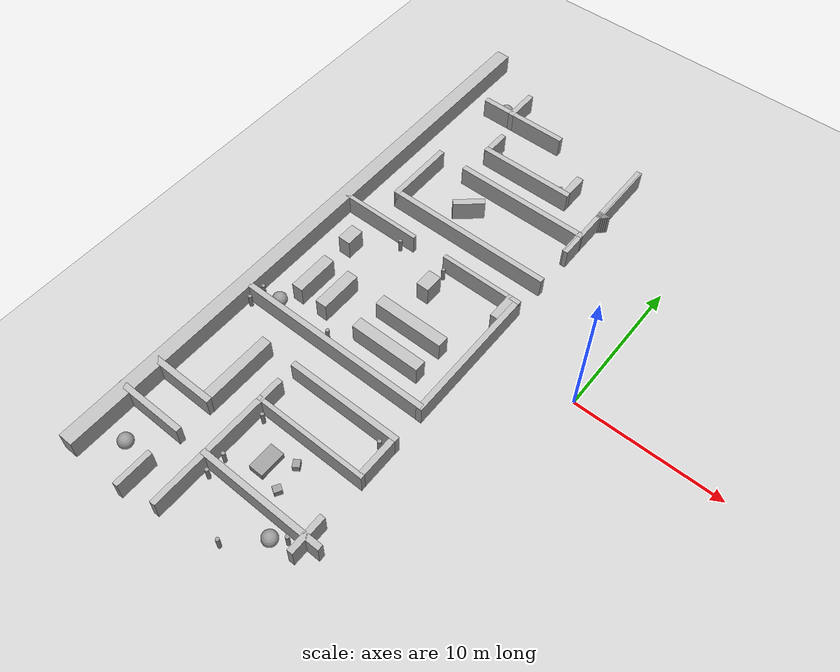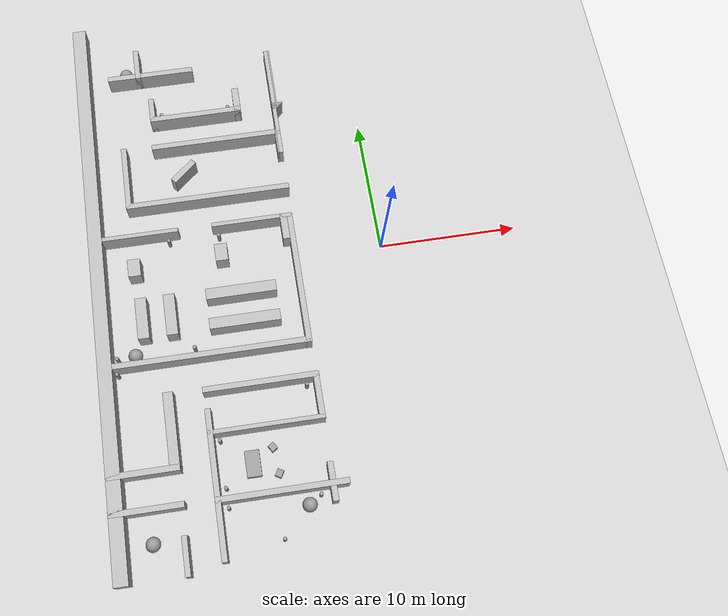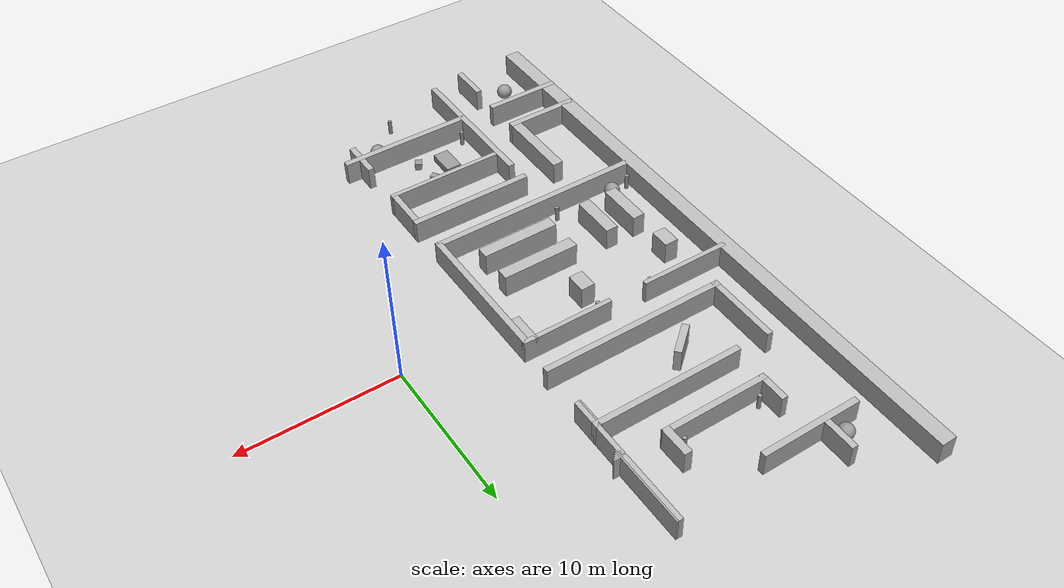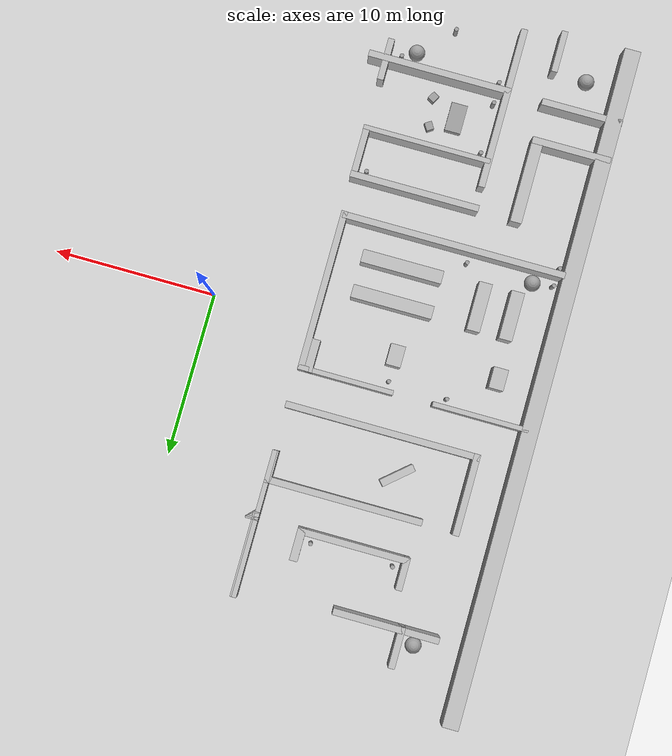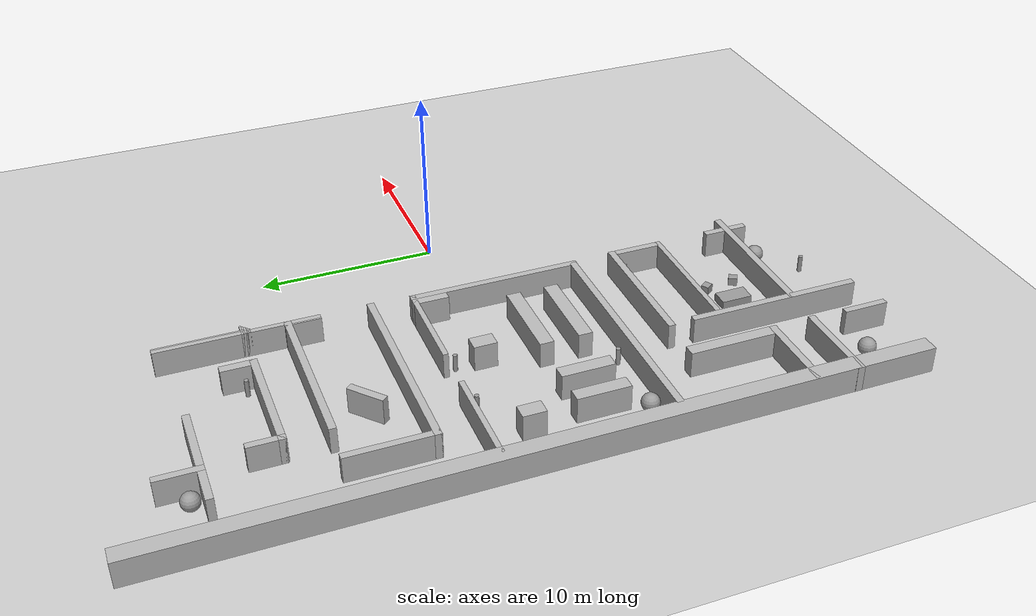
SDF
<sdf version="1.7">
 <world name="test_world">
  <model name="ground_plane">
   <static>1</static>
   <link name="link">
    <collision name="collision">
     <geometry><plane><normal>0 0 1</normal><size>100 100</size></plane></geometry>
    </collision>
    <visual name="visual">
     <geometry><plane><normal>0 0 1</normal><size>100 100</size></plane></geometry>
     <material>
      <script>
       <uri>file://media/materials/scripts/gazebo.material</uri>
       <name>__default__</name>
       <n>Gazebo/Grey</n>
      </script>
     </material>
    </visual>
   </link>
  </model>
  <model name="outer_left">
   <static>1</static>
   <pose>-20.5 0 0.75 0 -0 0</pose>
   <link name="link">
    <collision name="collision"><geometry><box><size>1 42 1.5</size></box></geometry></collision>
    <visual name="visual">
     <geometry><box><size>1 42 1.5</size></box></geometry>
     <material>
      <script>
       <uri>file://media/materials/scripts/gazebo.material</uri>
       <name>__default__</name>
       <n>Gazebo/Grey</n>
      </script>
     </material>
    </visual>
   </link>
  </model>
  <model name="hw_0">
   <static>1</static>
   <pose>-15.3 16.25 0.75 0 -0 0</pose>
   <link name="link">
    <collision name="collision"><geometry><box><size>6.5 0.4 1.5</size></box></geometry></collision>
    <visual name="visual">
     <geometry><box><size>6.5 0.4 1.5</size></box></geometry>
     <material>
      <script>
       <uri>file://media/materials/scripts/gazebo.material</uri>
       <name>__default__</name>
       <n>Gazebo/Grey</n>
      </script>
     </material>
    </visual>
   </link>
  </model>
  <model name="hw_1">
   <static>1</static>
   <pose>-12.05 5.25 0.75 0 -0 0</pose>
   <link name="link">
    <collision name="collision"><geometry><box><size>12 0.4 1.5</size></box></geometry></collision>
    <visual name="visual">
     <geometry><box><size>12 0.4 1.5</size></box></geometry>
     <material>
      <script>
       <uri>file://media/materials/scripts/gazebo.material</uri>
       <name>__default__</name>
       <n>Gazebo/Grey</n>
      </script>
     </material>
    </visual>
   </link>
  </model>
  <model name="hw_2">
   <static>1</static>
   <pose>-10.9 9.85 0.75 0 -0 0</pose>
   <link name="link">
    <collision name="collision"><geometry><box><size>9.7 0.4 1.5</size></box></geometry></collision>
    <visual name="visual">
     <geometry><box><size>9.7 0.4 1.5</size></box></geometry>
     <material>
      <script>
       <uri>file://media/materials/scripts/gazebo.material</uri>
       <name>__default__</name>
       <n>Gazebo/Grey</n>
      </script>
     </material>
    </visual>
   </link>
  </model>
  <model name="hw_3">
   <static>1</static>
   <pose>-12.2 12.25 0.75 0 -0 0</pose>
   <link name="link">
    <collision name="collision"><geometry><box><size>6.9 0.4 1.5</size></box></geometry></collision>
    <visual name="visual">
     <geometry><box><size>6.9 0.4 1.5</size></box></geometry>
     <material>
      <script>
       <uri>file://media/materials/scripts/gazebo.material</uri>
       <name>__default__</name>
       <n>Gazebo/Grey</n>
      </script>
     </material>
    </visual>
   </link>
  </model>
  <model name="hw_4">
   <static>1</static>
   <pose>-13.6 7.55 0.75 0 -0 0.712137</pose>
   <link name="link">
    <collision name="collision"><geometry><box><size>2.16529 0.451675 1.5</size></box></geometry></collision>
    <visual name="visual">
     <geometry><box><size>2.16529 0.451675 1.5</size></box></geometry>
     <material>
      <script>
       <uri>file://media/materials/scripts/gazebo.material</uri>
       <name>__default__</name>
       <n>Gazebo/Grey</n>
      </script>
     </material>
    </visual>
   </link>
  </model>
  <model name="hw_5">
   <static>1</static>
   <pose>-10.05 -9.15 0.75 0 -0 0</pose>
   <link name="link">
    <collision name="collision"><geometry><box><size>8 0.4 1.5</size></box></geometry></collision>
    <visual name="visual">
     <geometry><box><size>8 0.4 1.5</size></box></geometry>
     <material>
      <script>
       <uri>file://media/materials/scripts/gazebo.material</uri>
       <name>__default__</name>
       <n>Gazebo/Grey</n>
      </script>
     </material>
    </visual>
   </link>
  </model>
  <model name="hw_6">
   <static>1</static>
   <pose>-10.05 -12.1 0.75 0 -0 0</pose>
   <link name="link">
    <collision name="collision"><geometry><box><size>8 0.3 1.5</size></box></geometry></collision>
    <visual name="visual">
     <geometry><box><size>8 0.3 1.5</size></box></geometry>
     <material>
      <script>
       <uri>file://media/materials/scripts/gazebo.material</uri>
       <name>__default__</name>
       <n>Gazebo/Grey</n>
      </script>
     </material>
    </visual>
   </link>
  </model>
  <model name="hw_7">
   <static>1</static>
   <pose>-9.6 -16.55 0.75 0 -0 0</pose>
   <link name="link">
    <collision name="collision"><geometry><box><size>8.9 0.4 1.5</size></box></geometry></collision>
    <visual name="visual">
     <geometry><box><size>8.9 0.4 1.5</size></box></geometry>
     <material>
      <script>
       <uri>file://media/materials/scripts/gazebo.material</uri>
       <name>__default__</name>
       <n>Gazebo/Grey</n>
      </script>
     </material>
    </visual>
   </link>
  </model>
  <model name="hw_8">
   <static>1</static>
   <pose>-10.55 -2.35 0.75 0 -0 0</pose>
   <link name="link">
    <collision name="collision"><geometry><box><size>5 0.8 1.5</size></box></geometry></collision>
    <visual name="visual">
     <geometry><box><size>5 0.8 1.5</size></box></geometry>
     <material>
      <script>
       <uri>file://media/materials/scripts/gazebo.material</uri>
       <name>__default__</name>
       <n>Gazebo/Grey</n>
      </script>
     </material>
    </visual>
   </link>
  </model>
  <model name="hw_9">
   <static>1</static>
   <pose>-10.55 -4.55 0.75 0 -0 0</pose>
   <link name="link">
    <collision name="collision"><geometry><box><size>5 0.8 1.5</size></box></geometry></collision>
    <visual name="visual">
     <geometry><box><size>5 0.8 1.5</size></box></geometry>
     <material>
      <script>
       <uri>file://media/materials/scripts/gazebo.material</uri>
       <name>__default__</name>
       <n>Gazebo/Grey</n>
      </script>
     </material>
    </visual>
   </link>
  </model>
  <model name="hw_10">
   <static>1</static>
   <pose>-9.1 2.9 0.75 0 -0 0</pose>
   <link name="link">
    <collision name="collision"><geometry><box><size>5.9 0.3 1.5</size></box></geometry></collision>
    <visual name="visual">
     <geometry><box><size>5.9 0.3 1.5</size></box></geometry>
     <material>
      <script>
       <uri>file://media/materials/scripts/gazebo.material</uri>
       <name>__default__</name>
       <n>Gazebo/Grey</n>
      </script>
     </material>
    </visual>
   </link>
  </model>
  <model name="hw_12">
   <static>1</static>
   <pose>-6.15 11.9 0.75 0 -0 0</pose>
   <link name="link">
    <collision name="collision"><geometry><box><size>0.4 0.1 1.5</size></box></geometry></collision>
    <visual name="visual">
     <geometry><box><size>0.4 0.1 1.5</size></box></geometry>
     <material>
      <script>
       <uri>file://media/materials/scripts/gazebo.material</uri>
       <name>__default__</name>
       <n>Gazebo/Grey</n>
      </script>
     </material>
    </visual>
   </link>
  </model>
  <model name="hw_13">
   <static>1</static>
   <pose>-6.1 12 0.75 0 -0 0</pose>
   <link name="link">
    <collision name="collision"><geometry><box><size>0.5 0.1 1.5</size></box></geometry></collision>
    <visual name="visual">
     <geometry><box><size>0.5 0.1 1.5</size></box></geometry>
     <material>
      <script>
       <uri>file://media/materials/scripts/gazebo.material</uri>
       <name>__default__</name>
       <n>Gazebo/Grey</n>
      </script>
     </material>
    </visual>
   </link>
  </model>
  <model name="hw_14">
   <static>1</static>
   <pose>-6.05 12.1 0.75 0 -0 0</pose>
   <link name="link">
    <collision name="collision"><geometry><box><size>0.6 0.1 1.5</size></box></geometry></collision>
    <visual name="visual">
     <geometry><box><size>0.6 0.1 1.5</size></box></geometry>
     <material>
      <script>
       <uri>file://media/materials/scripts/gazebo.material</uri>
       <name>__default__</name>
       <n>Gazebo/Grey</n>
      </script>
     </material>
    </visual>
   </link>
  </model>
  <model name="hw_15">
   <static>1</static>
   <pose>-6 12.2 0.75 0 -0 0</pose>
   <link name="link">
    <collision name="collision"><geometry><box><size>0.7 0.1 1.5</size></box></geometry></collision>
    <visual name="visual">
     <geometry><box><size>0.7 0.1 1.5</size></box></geometry>
     <material>
      <script>
       <uri>file://media/materials/scripts/gazebo.material</uri>
       <name>__default__</name>
       <n>Gazebo/Grey</n>
      </script>
     </material>
    </visual>
   </link>
  </model>
  <model name="hw_16">
   <static>1</static>
   <pose>-5.95 12.3 0.75 0 -0 0</pose>
   <link name="link">
    <collision name="collision"><geometry><box><size>0.8 0.1 1.5</size></box></geometry></collision>
    <visual name="visual">
     <geometry><box><size>0.8 0.1 1.5</size></box></geometry>
     <material>
      <script>
       <uri>file://media/materials/scripts/gazebo.material</uri>
       <name>__default__</name>
       <n>Gazebo/Grey</n>
      </script>
     </material>
    </visual>
   </link>
  </model>
  <model name="vw_132">
   <static>1</static>
   <pose>-16.25 17.3 0.75 0 -0 0</pose>
   <link name="link">
    <collision name="collision"><geometry><box><size>0.4 2.5 1.5</size></box></geometry></collision>
    <visual name="visual">
     <geometry><box><size>0.4 2.5 1.5</size></box></geometry>
     <material>
      <script>
       <uri>file://media/materials/scripts/gazebo.material</uri>
       <name>__default__</name>
       <n>Gazebo/Grey</n>
      </script>
     </material>
    </visual>
   </link>
  </model>
  <model name="vw_147">
   <static>1</static>
   <pose>-6 14.45 0.75 0 -0 0</pose>
   <link name="link">
    <collision name="collision"><geometry><box><size>0.1 5.2 1.5</size></box></geometry></collision>
    <visual name="visual">
     <geometry><box><size>0.1 5.2 1.5</size></box></geometry>
     <material>
      <script>
       <uri>file://media/materials/scripts/gazebo.material</uri>
       <name>__default__</name>
       <n>Gazebo/Grey</n>
      </script>
     </material>
    </visual>
   </link>
  </model>
  <model name="vw_148">
   <static>1</static>
   <pose>-6.2 12.55 0.75 0 -0 0</pose>
   <link name="link">
    <collision name="collision"><geometry><box><size>0.3 9 1.5</size></box></geometry></collision>
    <visual name="visual">
     <geometry><box><size>0.3 9 1.5</size></box></geometry>
     <material>
      <script>
       <uri>file://media/materials/scripts/gazebo.material</uri>
       <name>__default__</name>
       <n>Gazebo/Grey</n>
      </script>
     </material>
    </visual>
   </link>
  </model>
  <model name="vw_155">
   <static>1</static>
   <pose>-15.45 13.05 0.75 0 -0 0</pose>
   <link name="link">
    <collision name="collision"><geometry><box><size>0.4 2 1.5</size></box></geometry></collision>
    <visual name="visual">
     <geometry><box><size>0.4 2 1.5</size></box></geometry>
     <material>
      <script>
       <uri>file://media/materials/scripts/gazebo.material</uri>
       <name>__default__</name>
       <n>Gazebo/Grey</n>
      </script>
     </material>
    </visual>
   </link>
  </model>
  <model name="vw_156">
   <static>1</static>
   <pose>-9 13.05 0.75 0 -0 0</pose>
   <link name="link">
    <collision name="collision"><geometry><box><size>0.5 2 1.5</size></box></geometry></collision>
    <visual name="visual">
     <geometry><box><size>0.5 2 1.5</size></box></geometry>
     <material>
      <script>
       <uri>file://media/materials/scripts/gazebo.material</uri>
       <name>__default__</name>
       <n>Gazebo/Grey</n>
      </script>
     </material>
    </visual>
   </link>
  </model>
  <model name="vw_180">
   <static>1</static>
   <pose>-6.4 9.05 0.75 0 -0 0</pose>
   <link name="link">
    <collision name="collision"><geometry><box><size>0.1 2 1.5</size></box></geometry></collision>
    <visual name="visual">
     <geometry><box><size>0.1 2 1.5</size></box></geometry>
     <material>
      <script>
       <uri>file://media/materials/scripts/gazebo.material</uri>
       <name>__default__</name>
       <n>Gazebo/Grey</n>
      </script>
     </material>
    </visual>
   </link>
  </model>
  <model name="vw_181">
   <static>1</static>
   <pose>-17.85 7.55 0.75 0 -0 0</pose>
   <link name="link">
    <collision name="collision"><geometry><box><size>0.4 5 1.5</size></box></geometry></collision>
    <visual name="visual">
     <geometry><box><size>0.4 5 1.5</size></box></geometry>
     <material>
      <script>
       <uri>file://media/materials/scripts/gazebo.material</uri>
       <name>__default__</name>
       <n>Gazebo/Grey</n>
      </script>
     </material>
    </visual>
   </link>
  </model>
  <model name="vw_228">
   <static>1</static>
   <pose>-6.8 2.05 0.75 0 -0 0</pose>
   <link name="link">
    <collision name="collision"><geometry><box><size>0.5 2 1.5</size></box></geometry></collision>
    <visual name="visual">
     <geometry><box><size>0.5 2 1.5</size></box></geometry>
     <material>
      <script>
       <uri>file://media/materials/scripts/gazebo.material</uri>
       <name>__default__</name>
       <n>Gazebo/Grey</n>
      </script>
     </material>
    </visual>
   </link>
  </model>
  <model name="vw_232">
   <static>1</static>
   <pose>-6.35 -1.9 0.75 0 -0 0</pose>
   <link name="link">
    <collision name="collision"><geometry><box><size>0.4 9.9 1.5</size></box></geometry></collision>
    <visual name="visual">
     <geometry><box><size>0.4 9.9 1.5</size></box></geometry>
     <material>
      <script>
       <uri>file://media/materials/scripts/gazebo.material</uri>
       <name>__default__</name>
       <n>Gazebo/Grey</n>
      </script>
     </material>
    </visual>
   </link>
  </model>
  <model name="vw_236">
   <static>1</static>
   <pose>-11.6 0.7 0.75 0 -0 0</pose>
   <link name="link">
    <collision name="collision"><geometry><box><size>0.9 1.3 1.5</size></box></geometry></collision>
    <visual name="visual">
     <geometry><box><size>0.9 1.3 1.5</size></box></geometry>
     <material>
      <script>
       <uri>file://media/materials/scripts/gazebo.material</uri>
       <name>__default__</name>
       <n>Gazebo/Grey</n>
      </script>
     </material>
    </visual>
   </link>
  </model>
  <model name="vw_241">
   <static>1</static>
   <pose>-17.65 -3.45 0.75 0 -0 0</pose>
   <link name="link">
    <collision name="collision"><geometry><box><size>0.8 3 1.5</size></box></geometry></collision>
    <visual name="visual">
     <geometry><box><size>0.8 3 1.5</size></box></geometry>
     <material>
      <script>
       <uri>file://media/materials/scripts/gazebo.material</uri>
       <name>__default__</name>
       <n>Gazebo/Grey</n>
      </script>
     </material>
    </visual>
   </link>
  </model>
  <model name="vw_242">
   <static>1</static>
   <pose>-15.65 -3.45 0.75 0 -0 0</pose>
   <link name="link">
    <collision name="collision"><geometry><box><size>0.8 3 1.5</size></box></geometry></collision>
    <visual name="visual">
     <geometry><box><size>0.8 3 1.5</size></box></geometry>
     <material>
      <script>
       <uri>file://media/materials/scripts/gazebo.material</uri>
       <name>__default__</name>
       <n>Gazebo/Grey</n>
      </script>
     </material>
    </visual>
   </link>
  </model>
  <model name="vw_252">
   <static>1</static>
   <pose>-16.4 -11.45 0.75 0 -0 0</pose>
   <link name="link">
    <collision name="collision"><geometry><box><size>0.7 5 1.5</size></box></geometry></collision>
    <visual name="visual">
     <geometry><box><size>0.7 5 1.5</size></box></geometry>
     <material>
      <script>
       <uri>file://media/materials/scripts/gazebo.material</uri>
       <name>__default__</name>
       <n>Gazebo/Grey</n>
      </script>
     </material>
    </visual>
   </link>
  </model>
  <model name="vw_256">
   <static>1</static>
   <pose>-6.25 -16.45 0.75 0 -0 0</pose>
   <link name="link">
    <collision name="collision"><geometry><box><size>0.4 2.6 1.5</size></box></geometry></collision>
    <visual name="visual">
     <geometry><box><size>0.4 2.6 1.5</size></box></geometry>
     <material>
      <script>
       <uri>file://media/materials/scripts/gazebo.material</uri>
       <name>__default__</name>
       <n>Gazebo/Grey</n>
      </script>
     </material>
    </visual>
   </link>
  </model>
  <model name="hw_10_clone">
   <static>1</static>
   <pose>-17.4347 2.88932 0.75 0 -0 0</pose>
   <link name="link">
    <collision name="collision"><geometry><box><size>5.9 0.3 1.5</size></box></geometry></collision>
    <visual name="visual">
     <geometry><box><size>5.9 0.3 1.5</size></box></geometry>
     <material>
      <script>
       <uri>file://media/materials/scripts/gazebo.material</uri>
       <name>__default__</name>
       <n>Gazebo/Grey</n>
      </script>
     </material>
    </visual>
   </link>
  </model>
  <model name="hw_5_clone">
   <static>1</static>
   <pose>-13.1839 -6.63977 0.75 0 -0 0</pose>
   <link name="link">
    <collision name="collision"><geometry><box><size>13.8088 0.4 1.5</size></box></geometry></collision>
    <visual name="visual">
     <geometry><box><size>13.8088 0.4 1.5</size></box></geometry>
     <material>
      <script>
       <uri>file://media/materials/scripts/gazebo.material</uri>
       <name>__default__</name>
       <n>Gazebo/Grey</n>
      </script>
     </material>
    </visual>
   </link>
  </model>
  <model name="hw_9_clone">
   <static>1</static>
   <pose>-18.4951 -14.0764 0.75 0 -0 0</pose>
   <link name="link">
    <collision name="collision"><geometry><box><size>4.87261 0.421535 1.5</size></box></geometry></collision>
    <visual name="visual">
     <geometry><box><size>4.87261 0.421535 1.5</size></box></geometry>
     <material>
      <script>
       <uri>file://media/materials/scripts/gazebo.material</uri>
       <name>__default__</name>
       <n>Gazebo/Grey</n>
      </script>
     </material>
    </visual>
   </link>
  </model>
  <model name="hw_9_clone_0">
   <static>1</static>
   <pose>-18.5142 -16.4886 0.75 0 -0 0</pose>
   <link name="link">
    <collision name="collision"><geometry><box><size>5 0.398124 1.5</size></box></geometry></collision>
    <visual name="visual">
     <geometry><box><size>5 0.398124 1.5</size></box></geometry>
     <material>
      <script>
       <uri>file://media/materials/scripts/gazebo.material</uri>
       <name>__default__</name>
       <n>Gazebo/Grey</n>
      </script>
     </material>
    </visual>
   </link>
  </model>
  <model name="vw_252_clone">
   <static>1</static>
   <pose>-16.2492 -19.7311 0.75 0 -0 0</pose>
   <link name="link">
    <collision name="collision"><geometry><box><size>0.372642 2.57525 1.5</size></box></geometry></collision>
    <visual name="visual">
     <geometry><box><size>0.372642 2.57525 1.5</size></box></geometry>
     <material>
      <script>
       <uri>file://media/materials/scripts/gazebo.material</uri>
       <name>__default__</name>
       <n>Gazebo/Grey</n>
      </script>
     </material>
    </visual>
   </link>
  </model>
  <model name="vw_253_clone_clone">
   <static>1</static>
   <pose>-13.8573 -15.4761 0.75 0 -0 0</pose>
   <link name="link">
    <collision name="collision"><geometry><box><size>0.4 10.0102 1.5</size></box></geometry></collision>
    <visual name="visual">
     <geometry><box><size>0.4 10.0102 1.5</size></box></geometry>
     <material>
      <script>
       <uri>file://media/materials/scripts/gazebo.material</uri>
       <name>__default__</name>
       <n>Gazebo/Grey</n>
      </script>
     </material>
    </visual>
   </link>
  </model>
  <model name="vw_236_clone">
   <static>1</static>
   <pose>-17.8746 0.397386 0.75 0 -0 0</pose>
   <link name="link">
    <collision name="collision"><geometry><box><size>0.9 1.3 1.5</size></box></geometry></collision>
    <visual name="visual">
     <geometry><box><size>0.9 1.3 1.5</size></box></geometry>
     <material>
      <script>
       <uri>file://media/materials/scripts/gazebo.material</uri>
       <name>__default__</name>
       <n>Gazebo/Grey</n>
      </script>
     </material>
    </visual>
   </link>
  </model>
  <model name="unit_box">
   <pose>-11.3099 -14.39 0.239131 0 1e-05 1.4e-05</pose>
   <link name="link">
    <inertial>
     <mass>1</mass>
     <inertia>
      <ixx>0.166667</ixx>
      <ixy>0</ixy>
      <ixz>0</ixz>
      <iyy>0.166667</iyy>
      <iyz>0</iyz>
      <izz>0.166667</izz>
     </inertia>
    </inertial>
    <collision name="collision"><geometry><box><size>1 1.7849 0.478272</size></box></geometry></collision>
    <visual name="visual">
     <geometry><box><size>1 1.7849 0.478272</size></box></geometry>
     <material>
      <script><name>Gazebo/Grey</name><uri>file://media/materials/scripts/gazebo.material</uri></script>
     </material>
    </visual>
   </link>
  </model>
  <model name="unit_sphere">
   <pose>-18.3803 -18.6415 0.5 0 -0 0</pose>
   <link name="link">
    <inertial>
     <mass>1</mass>
     <inertia><ixx>0.1</ixx><ixy>0</ixy><ixz>0</ixz><iyy>0.1</iyy><iyz>0</iyz><izz>0.1</izz></inertia>
    </inertial>
    <collision name="collision"><geometry><sphere><radius>0.5</radius></sphere></geometry></collision>
    <visual name="visual">
     <geometry><sphere><radius>0.5</radius></sphere></geometry>
     <material>
      <script><name>Gazebo/Grey</name><uri>file://media/materials/scripts/gazebo.material</uri></script>
     </material>
    </visual>
   </link>
  </model>
  <model name="unit_sphere_2">
   <pose>-17.227 17.0105 0.5 0 -0 0</pose>
   <link name="link">
    <inertial>
     <mass>1</mass>
     <inertia><ixx>0.1</ixx><ixy>0</ixy><ixz>0</ixz><iyy>0.1</iyy><iyz>0</iyz><izz>0.1</izz></inertia>
    </inertial>
    <collision name="collision"><geometry><sphere><radius>0.5</radius></sphere></geometry></collision>
    <visual name="visual">
     <geometry><sphere><radius>0.5</radius></sphere></geometry>
     <material>
      <script><name>Gazebo/Grey</name><uri>file://media/materials/scripts/gazebo.material</uri></script>
     </material>
    </visual>
   </link>
  </model>
  <model name="unit_cylinder">
   <pose>-6.93968 -9.648 0.499991 -0 -0 -1.3e-05</pose>
   <link name="link">
    <inertial>
     <mass>1</mass>
     <inertia><ixx>0.145833</ixx><ixy>0</ixy><ixz>0</ixz><iyy>0.145833</iyy><iyz>0</iyz><izz>0.125</izz></inertia>
    </inertial>
    <collision name="collision">
     <geometry><cylinder><radius>0.124927</radius><length>1</length></cylinder></geometry>
    </collision>
    <visual name="visual">
     <geometry><cylinder><radius>0.124927</radius><length>1</length></cylinder></geometry>
     <material>
      <script><name>Gazebo/Grey</name><uri>file://media/materials/scripts/gazebo.material</uri></script>
     </material>
    </visual>
   </link>
  </model>
  <model name="unit_cylinder_clone_3">
   <pose>-13.3079 -12.6063 0.499998 0 0 -1.5e-05</pose>
   <link name="link">
    <inertial>
     <mass>1</mass>
     <inertia><ixx>0.145833</ixx><ixy>0</ixy><ixz>0</ixz><iyy>0.145833</iyy><iyz>0</iyz><izz>0.125</izz></inertia>
    </inertial>
    <collision name="collision">
     <geometry><cylinder><radius>0.124927</radius><length>1</length></cylinder></geometry>
    </collision>
    <visual name="visual">
     <geometry><cylinder><radius>0.124927</radius><length>1</length></cylinder></geometry>
     <material>
      <script><name>Gazebo/Grey</name><uri>file://media/materials/scripts/gazebo.material</uri></script>
     </material>
    </visual>
   </link>
  </model>
  <model name="unit_cylinder_clone_4">
   <pose>-13.2682 -15.7942 0.499991 -0 -0 -1.6e-05</pose>
   <link name="link">
    <inertial>
     <mass>1</mass>
     <inertia><ixx>0.145833</ixx><ixy>0</ixy><ixz>0</ixz><iyy>0.145833</iyy><iyz>0</iyz><izz>0.125</izz></inertia>
    </inertial>
    <collision name="collision">
     <geometry><cylinder><radius>0.124927</radius><length>1</length></cylinder></geometry>
    </collision>
    <visual name="visual">
     <geometry><cylinder><radius>0.124927</radius><length>1</length></cylinder></geometry>
     <material>
      <script><name>Gazebo/Grey</name><uri>file://media/materials/scripts/gazebo.material</uri></script>
     </material>
    </visual>
   </link>
  </model>
  <model name="unit_cylinder_clone_5">
   <pose>-13.2515 -17.0844 0.499998 0 0 -1.5e-05</pose>
   <link name="link">
    <inertial>
     <mass>1</mass>
     <inertia><ixx>0.145833</ixx><ixy>0</ixy><ixz>0</ixz><iyy>0.145833</iyy><iyz>0</iyz><izz>0.125</izz></inertia>
    </inertial>
    <collision name="collision">
     <geometry><cylinder><radius>0.124927</radius><length>1</length></cylinder></geometry>
    </collision>
    <visual name="visual">
     <geometry><cylinder><radius>0.124927</radius><length>1</length></cylinder></geometry>
     <material>
      <script><name>Gazebo/Grey</name><uri>file://media/materials/scripts/gazebo.material</uri></script>
     </material>
    </visual>
   </link>
  </model>
  <model name="unit_cylinder_clone_6">
   <pose>-7.10488 -17.0817 0.499991 -0 -0 -1.5e-05</pose>
   <link name="link">
    <inertial>
     <mass>1</mass>
     <inertia><ixx>0.145833</ixx><ixy>0</ixy><ixz>0</ixz><iyy>0.145833</iyy><iyz>0</iyz><izz>0.125</izz></inertia>
    </inertial>
    <collision name="collision">
     <geometry><cylinder><radius>0.124927</radius><length>1</length></cylinder></geometry>
    </collision>
    <visual name="visual">
     <geometry><cylinder><radius>0.124927</radius><length>1</length></cylinder></geometry>
     <material>
      <script><name>Gazebo/Grey</name><uri>file://media/materials/scripts/gazebo.material</uri></script>
     </material>
    </visual>
   </link>
  </model>
  <model name="unit_cylinder_clone_7">
   <pose>-9.88393 -19.5476 0.499998 0 0 -1.4e-05</pose>
   <link name="link">
    <inertial>
     <mass>1</mass>
     <inertia><ixx>0.145833</ixx><ixy>0</ixy><ixz>0</ixz><iyy>0.145833</iyy><iyz>0</iyz><izz>0.125</izz></inertia>
    </inertial>
    <collision name="collision">
     <geometry><cylinder><radius>0.124927</radius><length>1</length></cylinder></geometry>
    </collision>
    <visual name="visual">
     <geometry><cylinder><radius>0.124927</radius><length>1</length></cylinder></geometry>
     <material>
      <script><name>Gazebo/Grey</name><uri>file://media/materials/scripts/gazebo.material</uri></script>
     </material>
    </visual>
   </link>
  </model>
  <model name="unit_cylinder_clone_10">
   <pose>-19.7626 -7.07194 0.499998 0 0 -1.3e-05</pose>
   <link name="link">
    <inertial>
     <mass>1</mass>
     <inertia><ixx>0.145833</ixx><ixy>0</ixy><ixz>0</ixz><iyy>0.145833</iyy><iyz>0</iyz><izz>0.125</izz></inertia>
    </inertial>
    <collision name="collision">
     <geometry><cylinder><radius>0.124927</radius><length>1</length></cylinder></geometry>
    </collision>
    <visual name="visual">
     <geometry><cylinder><radius>0.124927</radius><length>1</length></cylinder></geometry>
     <material>
      <script><name>Gazebo/Grey</name><uri>file://media/materials/scripts/gazebo.material</uri></script>
     </material>
    </visual>
   </link>
  </model>
  <model name="unit_box_0_clone_1">
   <pose>-9.8538 -13.4778 0.235786 0 -0 0.572818</pose>
   <link name="link">
    <inertial>
     <mass>1</mass>
     <inertia>
      <ixx>0.166667</ixx>
      <ixy>0</ixy>
      <ixz>0</ixz>
      <iyy>0.166667</iyy>
      <iyz>0</iyz>
      <izz>0.166667</izz>
     </inertia>
    </inertial>
    <collision name="collision">
     <geometry><box><size>0.450934 0.510982 0.471572</size></box></geometry>
    </collision>
    <visual name="visual">
     <geometry><box><size>0.450934 0.510982 0.471572</size></box></geometry>
     <material>
      <script><name>Gazebo/Grey</name><uri>file://media/materials/scripts/gazebo.material</uri></script>
     </material>
    </visual>
   </link>
  </model>
  <model name="unit_box_0_clone_clone">
   <pose>-9.645 -15.2713 0.235786 0 -0 -0.520666</pose>
   <link name="link">
    <inertial>
     <mass>1</mass>
     <inertia>
      <ixx>0.166667</ixx>
      <ixy>0</ixy>
      <ixz>0</ixz>
      <iyy>0.166667</iyy>
      <iyz>0</iyz>
      <izz>0.166667</izz>
     </inertia>
    </inertial>
    <collision name="collision">
     <geometry><box><size>0.450934 0.510983 0.471572</size></box></geometry>
    </collision>
    <visual name="visual">
     <geometry><box><size>0.450934 0.510983 0.471572</size></box></geometry>
     <material>
      <script><name>Gazebo/Grey</name><uri>file://media/materials/scripts/gazebo.material</uri></script>
     </material>
    </visual>
   </link>
  </model>
  <model name="unit_cylinder_clone_1_clone_0">
   <pose>-15.2676 2.35643 0.499991 -0 -0 -1.7e-05</pose>
   <link name="link">
    <inertial>
     <mass>1</mass>
     <inertia><ixx>0.145833</ixx><ixy>0</ixy><ixz>0</ixz><iyy>0.145833</iyy><iyz>0</iyz><izz>0.125</izz></inertia>
    </inertial>
    <collision name="collision">
     <geometry><cylinder><radius>0.124927</radius><length>1</length></cylinder></geometry>
    </collision>
    <visual name="visual">
     <geometry><cylinder><radius>0.124927</radius><length>1</length></cylinder></geometry>
     <material>
      <script><name>Gazebo/Grey</name><uri>file://media/materials/scripts/gazebo.material</uri></script>
     </material>
    </visual>
   </link>
  </model>
  <model name="unit_cylinder_clone_1_clone_1">
   <pose>-11.6303 2.27311 0.499991 -0 -0 -1.6e-05</pose>
   <link name="link">
    <inertial>
     <mass>1</mass>
     <inertia><ixx>0.145833</ixx><ixy>0</ixy><ixz>0</ixz><iyy>0.145833</iyy><iyz>0</iyz><izz>0.125</izz></inertia>
    </inertial>
    <collision name="collision">
     <geometry><cylinder><radius>0.124927</radius><length>1</length></cylinder></geometry>
    </collision>
    <visual name="visual">
     <geometry><cylinder><radius>0.124927</radius><length>1</length></cylinder></geometry>
     <material>
      <script><name>Gazebo/Grey</name><uri>file://media/materials/scripts/gazebo.material</uri></script>
     </material>
    </visual>
   </link>
  </model>
  <model name="unit_cylinder_clone_1_clone_2">
   <pose>-14.2715 -5.91181 0.499991 -0 -0 -1.6e-05</pose>
   <link name="link">
    <inertial>
     <mass>1</mass>
     <inertia><ixx>0.145833</ixx><ixy>0</ixy><ixz>0</ixz><iyy>0.145833</iyy><iyz>0</iyz><izz>0.125</izz></inertia>
    </inertial>
    <collision name="collision">
     <geometry><cylinder><radius>0.124927</radius><length>1</length></cylinder></geometry>
    </collision>
    <visual name="visual">
     <geometry><cylinder><radius>0.124927</radius><length>1</length></cylinder></geometry>
     <material>
      <script><name>Gazebo/Grey</name><uri>file://media/materials/scripts/gazebo.material</uri></script>
     </material>
    </visual>
   </link>
  </model>
  <model name="unit_cylinder_clone_1_clone_3">
   <pose>-19.6741 -5.96307 0.499991 -0 -0 -1.6e-05</pose>
   <link name="link">
    <inertial>
     <mass>1</mass>
     <inertia><ixx>0.145833</ixx><ixy>0</ixy><ixz>0</ixz><iyy>0.145833</iyy><iyz>0</iyz><izz>0.125</izz></inertia>
    </inertial>
    <collision name="collision">
     <geometry><cylinder><radius>0.124927</radius><length>1</length></cylinder></geometry>
    </collision>
    <visual name="visual">
     <geometry><cylinder><radius>0.124927</radius><length>1</length></cylinder></geometry>
     <material>
      <script><name>Gazebo/Grey</name><uri>file://media/materials/scripts/gazebo.material</uri></script>
     </material>
    </visual>
   </link>
  </model>
  <model name="unit_cylinder_clone_1_clone_4">
   <pose>-14.7934 12.8589 0.499999 0 0 -1.6e-05</pose>
   <link name="link">
    <inertial>
     <mass>1</mass>
     <inertia><ixx>0.145833</ixx><ixy>0</ixy><ixz>0</ixz><iyy>0.145833</iyy><iyz>0</iyz><izz>0.125</izz></inertia>
    </inertial>
    <collision name="collision">
     <geometry><cylinder><radius>0.124927</radius><length>1</length></cylinder></geometry>
    </collision>
    <visual name="visual">
     <geometry><cylinder><radius>0.124927</radius><length>1</length></cylinder></geometry>
     <material>
      <script><name>Gazebo/Grey</name><uri>file://media/materials/scripts/gazebo.material</uri></script>
     </material>
    </visual>
   </link>
  </model>
  <model name="unit_cylinder_clone_1_clone_5">
   <pose>-9.71523 12.857 0.499991 -0 -0 -1.5e-05</pose>
   <link name="link">
    <inertial>
     <mass>1</mass>
     <inertia><ixx>0.145833</ixx><ixy>0</ixy><ixz>0</ixz><iyy>0.145833</iyy><iyz>0</iyz><izz>0.125</izz></inertia>
    </inertial>
    <collision name="collision">
     <geometry><cylinder><radius>0.124927</radius><length>1</length></cylinder></geometry>
    </collision>
    <visual name="visual">
     <geometry><cylinder><radius>0.124927</radius><length>1</length></cylinder></geometry>
     <material>
      <script><name>Gazebo/Grey</name><uri>file://media/materials/scripts/gazebo.material</uri></script>
     </material>
    </visual>
   </link>
  </model>
  <model name="vw_256_clone">
   <static>1</static>
   <pose>-6.26075 -10.6042 0.75 0 -0 0</pose>
   <link name="link">
    <collision name="collision"><geometry><box><size>0.4 2.75577 1.5</size></box></geometry></collision>
    <visual name="visual">
     <geometry><box><size>0.4 2.75577 1.5</size></box></geometry>
     <material>
      <script>
       <uri>file://media/materials/scripts/gazebo.material</uri>
       <name>__default__</name>
       <n>Gazebo/Grey</n>
      </script>
     </material>
    </visual>
   </link>
  </model>
  <model name="unit_sphere_clone_0">
   <pose>-18.4271 -5.82431 0.5 0 -0 0</pose>
   <link name="link">
    <inertial>
     <mass>1</mass>
     <inertia><ixx>0.1</ixx><ixy>0</ixy><ixz>0</ixz><iyy>0.1</iyy><iyz>0</iyz><izz>0.1</izz></inertia>
    </inertial>
    <collision name="collision"><geometry><sphere><radius>0.5</radius></sphere></geometry></collision>
    <visual name="visual">
     <geometry><sphere><radius>0.5</radius></sphere></geometry>
     <material>
      <script><name>Gazebo/Grey</name><uri>file://media/materials/scripts/gazebo.material</uri></script>
     </material>
    </visual>
   </link>
  </model>
  <model name="unit_sphere_0_clone_0">
   <pose>-7.94107 -17.6187 0.5 0 -0 0</pose>
   <link name="link">
    <inertial>
     <mass>1</mass>
     <inertia><ixx>0.1</ixx><ixy>0</ixy><ixz>0</ixz><iyy>0.1</iyy><iyz>0</iyz><izz>0.1</izz></inertia>
    </inertial>
    <collision name="collision"><geometry><sphere><radius>0.5</radius></sphere></geometry></collision>
    <visual name="visual">
     <geometry><sphere><radius>0.5</radius></sphere></geometry>
     <material>
      <script><name>Gazebo/Grey</name><uri>file://media/materials/scripts/gazebo.material</uri></script>
     </material>
    </visual>
   </link>
  </model>
 </world>
</sdf>
